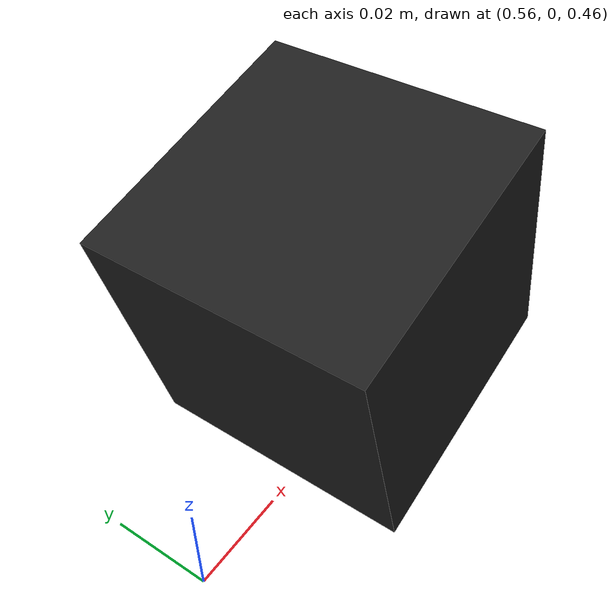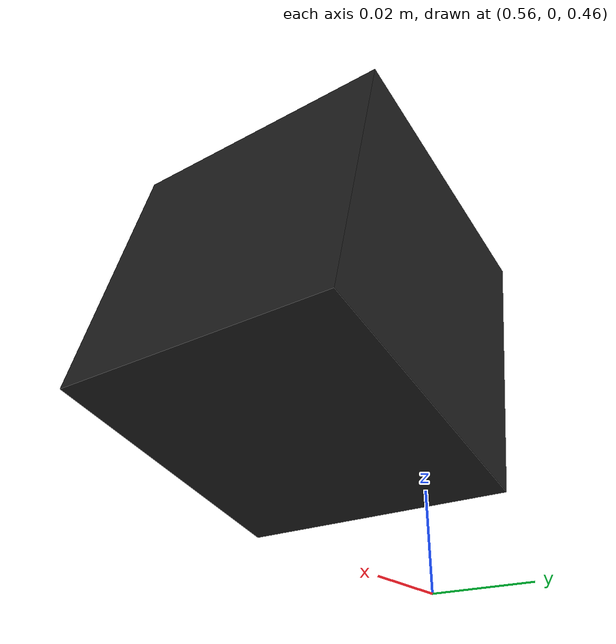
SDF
<?xml version="1.0" ?>
<sdf version="1.5">
  <model name="masa_kamerasi">
    <static>true</static>
    <pose>0.6 0.0 0.5 0 0.25 3.14</pose> <link name="link">
      <visual name="visual">
        <geometry>
          <box>
            <size>0.05 0.05 0.05</size>
          </box>
        </geometry>
        <material>
          <script>
            <uri>file://media/materials/scripts/gazebo.material</uri>
            <name>Gazebo/Black</name>
          </script>
        </material>
      </visual>
      <sensor type="camera" name="camera1">
        <update_rate>30.0</update_rate>
        <camera name="head">
          <horizontal_fov>1.3962634</horizontal_fov>
          <image>
            <width>640</width>
            <height>480</height>
            <format>R8G8B8</format>
          </image>
          <clip>
            <near>0.02</near>
            <far>300</far>
          </clip>
        </camera>
        <plugin name="camera_controller" filename="libgazebo_ros_camera.so">
          <alwaysOn>true</alwaysOn>
          <updateRate>0.0</updateRate>
          <cameraName>usb_cam</cameraName>
          <imageTopicName>image_raw</imageTopicName>
          <cameraInfoTopicName>camera_info</cameraInfoTopicName>
          <frameName>camera_link</frameName>
        </plugin>
      </sensor>
    </link>
  </model>
</sdf>
